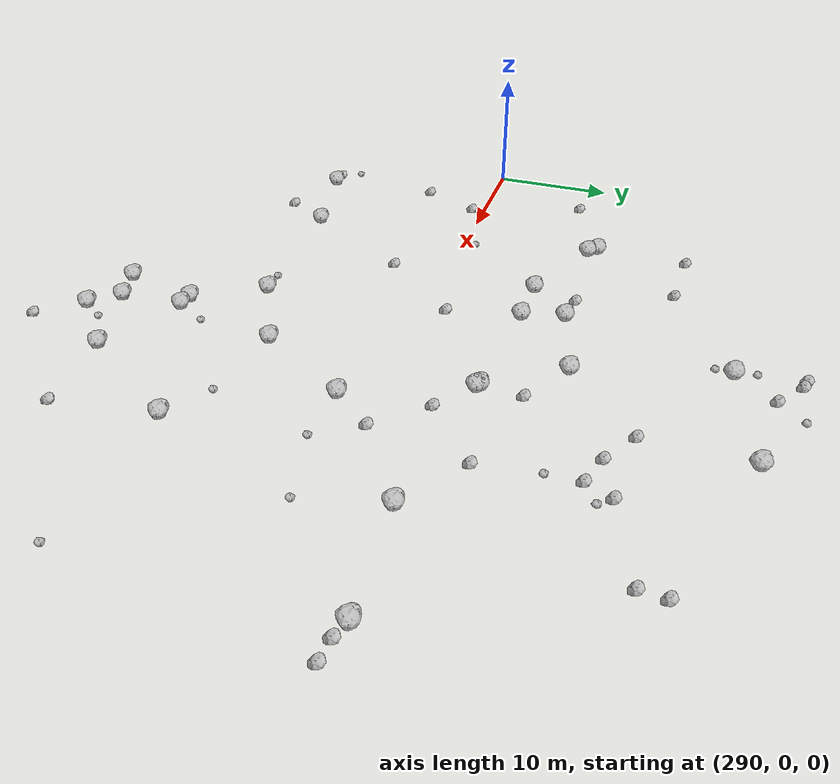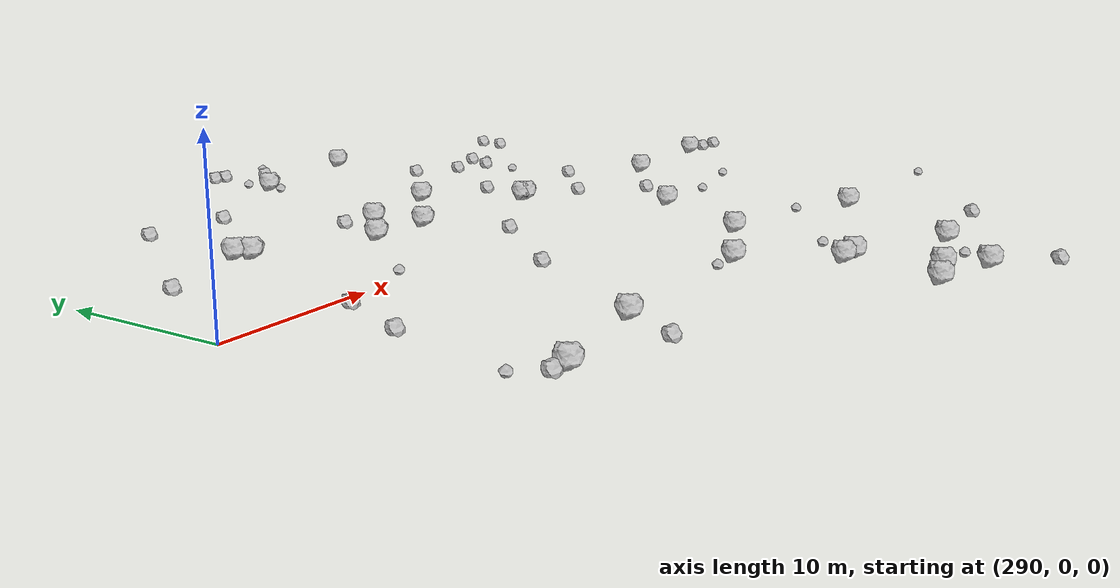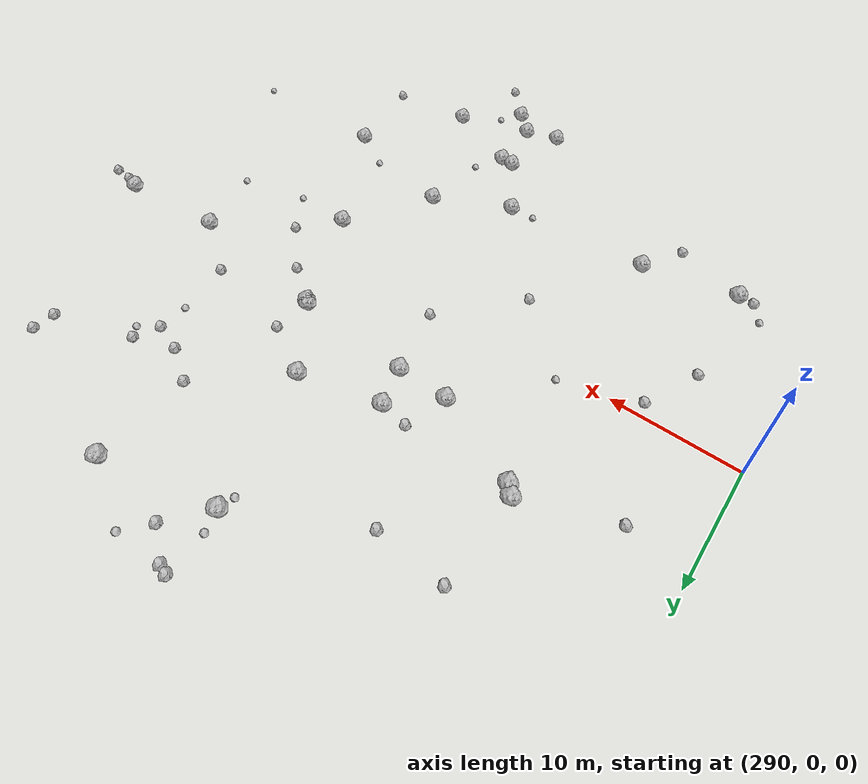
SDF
<sdf version="1.6">
 <world name="default">
  <include><uri>model://sun</uri></include>
  <model name="rock1_8_3">
   <include><uri>model://rock1</uri><pose>327.6459121304374 -21.847493076983003 0.5 0 0 0</pose></include>
  </model>
  <model name="rock1_8_4">
   <include><uri>model://rock1</uri><pose>345.97020270851215 5.326754281193388 0.5 0 0 0</pose></include>
  </model>
  <model name="rock1_8_5">
   <include><uri>model://rock1</uri><pose>322.9544150449867 -9.985085171744515 0.5 0 0 0</pose></include>
  </model>
  <model name="rock1_8_6">
   <include><uri>model://rock1</uri><pose>333.57518659215305 -13.272234392566912 0.5 0 0 0</pose></include>
  </model>
  <model name="rock1_8_7">
   <include><uri>model://rock1</uri><pose>327.60300705851773 -2.6617768228810874 0.5 0 0 0</pose></include>
  </model>
  <model name="rock1_8_8">
   <include><uri>model://rock1</uri><pose>296.18168284832717 -15.114412535445592 0.5 0 0 0</pose></include>
  </model>
  <model name="rock1_8_9">
   <include><uri>model://rock1</uri><pose>313.7870255820452 7.274261585852251 0.5 0 0 0</pose></include>
  </model>
  <model name="rock1_8_10">
   <include><uri>model://rock1</uri><pose>325.9628163365891 25.680429505152077 0.5 0 0 0</pose></include>
  </model>
  <model name="rock1_8_11">
   <include><uri>model://rock1</uri><pose>303.95706602184435 -13.583114682869464 0.5 0 0 0</pose></include>
  </model>
  <model name="rock1_8_12">
   <include><uri>model://rock1</uri><pose>302.26546528210594 10.461037210355002 0.5 0 0 0</pose></include>
  </model>
  <model name="rock1_8_13">
   <include><uri>model://rock1</uri><pose>336.7650823640794 4.678528539214533 0.5 0 0 0</pose></include>
  </model>
  <model name="rock1_8_14">
   <include><uri>model://rock1</uri><pose>301.6172728386409 11.193192061794228 0.5 0 0 0</pose></include>
  </model>
  <model name="rock1_8_15">
   <include><uri>model://rock1</uri><pose>321.16586068718317 -23.689947878775257 0.5 0 0 0</pose></include>
  </model>
  <model name="rock1_8_16">
   <include><uri>model://rock1</uri><pose>316.45750308179305 -13.099267313089086 0.5 0 0 0</pose></include>
  </model>
  <model name="rock1_8_17">
   <include><uri>model://rock1</uri><pose>323.04685689920933 -25.740163345024655 0.5 0 0 0</pose></include>
  </model>
  <model name="rock1_8_18">
   <include><uri>model://rock1</uri><pose>318.23283734867533 -24.468512884235825 0.5 0 0 0</pose></include>
  </model>
  <model name="rock1_8_19">
   <include><uri>model://rock1</uri><pose>316.4865984520145 23.45271486071794 0.5 0 0 0</pose></include>
  </model>
  <model name="rock1_8_20">
   <include><uri>model://rock1</uri><pose>319.6508797078347 12.184458994503203 0.5 0 0 0</pose></include>
  </model>
  <model name="rock1_8_21">
   <include><uri>model://rock1</uri><pose>319.70233970141385 -18.41731846291792 0.5 0 0 0</pose></include>
  </model>
  <model name="rock1_8_22">
   <include><uri>model://rock1</uri><pose>323.6280956680521 6.540674282465218 0.5 0 0 0</pose></include>
  </model>
  <model name="rock1_8_23">
   <include><uri>model://rock1</uri><pose>323.82449338909385 6.359713307376502 0.5 0 0 0</pose></include>
  </model>
  <model name="rock1_8_24">
   <include><uri>model://rock1</uri><pose>320.88650602638666 -18.584066310748877 0.5 0 0 0</pose></include>
  </model>
  <model name="rock1_8_25">
   <include><uri>model://rock1</uri><pose>312.8848896804707 10.559713577649624 0.5 0 0 0</pose></include>
  </model>
  <model name="rock1_8_26">
   <include><uri>model://rock1</uri><pose>309.49395880517875 7.390681548362963 0.5 0 0 0</pose></include>
  </model>
  <model name="rock2_8_0">
   <include><uri>model://rock2</uri><pose>339.036283590597 21.413566047818428 0.3 0 0 0</pose></include>
  </model>
  <model name="rock2_8_1">
   <include><uri>model://rock2</uri><pose>315.01440629775755 1.5479757310330733 0.3 0 0 0</pose></include>
  </model>
  <model name="rock2_8_2">
   <include><uri>model://rock2</uri><pose>294.6380803371583 8.412841101510011 0.3 0 0 0</pose></include>
  </model>
  <model name="rock2_8_3">
   <include><uri>model://rock2</uri><pose>323.8640225217338 9.820361458785271 0.3 0 0 0</pose></include>
  </model>
  <model name="rock2_8_4">
   <include><uri>model://rock2</uri><pose>332.0965040277214 17.32030633982609 0.3 0 0 0</pose></include>
  </model>
  <model name="rock2_8_5">
   <include><uri>model://rock2</uri><pose>301.737579896598 18.650626862670045 0.3 0 0 0</pose></include>
  </model>
  <model name="rock2_8_6">
   <include><uri>model://rock2</uri><pose>310.4724841131972 10.943888643147488 0.3 0 0 0</pose></include>
  </model>
  <model name="rock2_8_7">
   <include><uri>model://rock2</uri><pose>348.977759865186 4.775260644268748 0.3 0 0 0</pose></include>
  </model>
  <model name="rock2_8_8">
   <include><uri>model://rock2</uri><pose>334.7353776354138 -21.247199912805954 0.3 0 0 0</pose></include>
  </model>
  <model name="rock2_8_9">
   <include><uri>model://rock2</uri><pose>326.8801901710193 4.131094895491806 0.3 0 0 0</pose></include>
  </model>
  <model name="rock2_8_10">
   <include><uri>model://rock2</uri><pose>316.6373089111707 28.22440111757153 0.3 0 0 0</pose></include>
  </model>
  <model name="rock2_8_11">
   <include><uri>model://rock2</uri><pose>330.24835299015297 0.5400270666667559 0.3 0 0 0</pose></include>
  </model>
  <model name="rock2_8_12">
   <include><uri>model://rock2</uri><pose>325.82514929994187 17.82055182310026 0.3 0 0 0</pose></include>
  </model>
  <model name="rock2_8_13">
   <include><uri>model://rock2</uri><pose>295.64765777987714 -5.703833584272392 0.3 0 0 0</pose></include>
  </model>
  <model name="rock2_8_14">
   <include><uri>model://rock2</uri><pose>318.936725363757 26.52992753355602 0.3 0 0 0</pose></include>
  </model>
  <model name="rock2_8_15">
   <include><uri>model://rock2</uri><pose>301.7944813008467 -17.076345212457564 0.3 0 0 0</pose></include>
  </model>
  <model name="rock2_8_16">
   <include><uri>model://rock2</uri><pose>315.8597794837553 28.448845395184783 0.3 0 0 0</pose></include>
  </model>
  <model name="rock2_8_17">
   <include><uri>model://rock2</uri><pose>294.85760126927585 -15.05104919227185 0.3 0 0 0</pose></include>
  </model>
  <model name="rock2_8_18">
   <include><uri>model://rock2</uri><pose>325.63916305901654 -28.91725320675594 0.3 0 0 0</pose></include>
  </model>
  <model name="rock2_8_19">
   <include><uri>model://rock2</uri><pose>309.5227502313639 -4.588874121621853 0.3 0 0 0</pose></include>
  </model>
  <model name="rock2_8_20">
   <include><uri>model://rock2</uri><pose>307.2725608639902 18.303561871863835 0.3 0 0 0</pose></include>
  </model>
  <model name="rock2_8_21">
   <include><uri>model://rock2</uri><pose>347.2891208529494 4.925464667705782 0.3 0 0 0</pose></include>
  </model>
  <model name="rock2_8_22">
   <include><uri>model://rock2</uri><pose>328.66557693169864 16.111806245543697 0.3 0 0 0</pose></include>
  </model>
  <model name="rock2_8_23">
   <include><uri>model://rock2</uri><pose>331.7948559094771 8.139844940697813 0.3 0 0 0</pose></include>
  </model>
  <model name="rock2_8_24">
   <include><uri>model://rock2</uri><pose>297.76971777702965 -1.029980490266464 0.3 0 0 0</pose></include>
  </model>
  <model name="rock2_8_25">
   <include><uri>model://rock2</uri><pose>331.16473008711233 15.316048691224111 0.3 0 0 0</pose></include>
  </model>
  <model name="rock2_8_26">
   <include><uri>model://rock2</uri><pose>338.8819430835103 19.573494523303765 0.3 0 0 0</pose></include>
  </model>
  <model name="rock3_8_0">
   <include><uri>model://rock3</uri><pose>315.94446850945343 25.084344246631886 0.2 0 0 0</pose></include>
  </model>
  <model name="rock3_8_1">
   <include><uri>model://rock3</uri><pose>314.23301239644326 -13.210470103262214 0.2 0 0 0</pose></include>
  </model>
  <model name="rock3_8_2">
   <include><uri>model://rock3</uri><pose>293.75620964547176 -13.476996541151852 0.2 0 0 0</pose></include>
  </model>
  <model name="rock3_8_3">
   <include><uri>model://rock3</uri><pose>332.75740081297783 16.3582146462996 0.2 0 0 0</pose></include>
  </model>
  <model name="rock3_8_4">
   <include><uri>model://rock3</uri><pose>322.22658535092035 -16.121605507786015 0.2 0 0 0</pose></include>
  </model>
  <model name="rock3_8_5">
   <include><uri>model://rock3</uri><pose>320.55641311794614 28.441576332279993 0.2 0 0 0</pose></include>
  </model>
  <model name="rock3_8_6">
   <include><uri>model://rock3</uri><pose>346.27892993705655 -13.831185397057194 0.2 0 0 0</pose></include>
  </model>
  <model name="rock3_8_7">
   <include><uri>model://rock3</uri><pose>332.3612441950891 -2.865218380064224 0.2 0 0 0</pose></include>
  </model>
  <model name="rock3_8_8">
   <include><uri>model://rock3</uri><pose>303.90143265346245 0.9788691721297162 0.2 0 0 0</pose></include>
  </model>
  <model name="rock3_8_9">
   <include><uri>model://rock3</uri><pose>329.8989406992908 -11.079372569419235 0.2 0 0 0</pose></include>
  </model>
  <model name="rock3_8_10">
   <include><uri>model://rock3</uri><pose>338.2031004467907 -1.5307023895043912 0.2 0 0 0</pose></include>
  </model>
  <model name="rock3_8_11">
   <include><uri>model://rock3</uri><pose>331.1079388667514 12.746006222029543 0.2 0 0 0</pose></include>
  </model>
  <model name="rock3_8_12">
   <include><uri>model://rock3</uri><pose>316.16064781777993 22.14388962720289 0.2 0 0 0</pose></include>
  </model>
  <model name="rock3_8_13">
   <include><uri>model://rock3</uri><pose>324.26161276316446 -23.967858390461057 0.2 0 0 0</pose></include>
  </model>
 </world>
</sdf>
